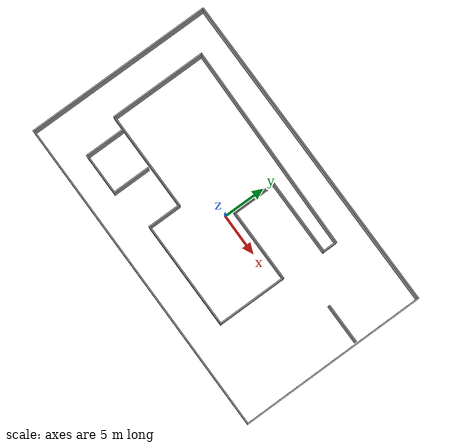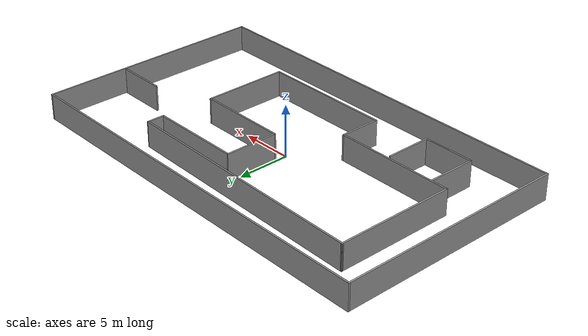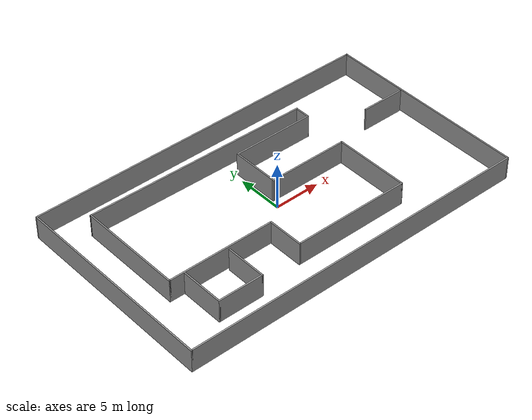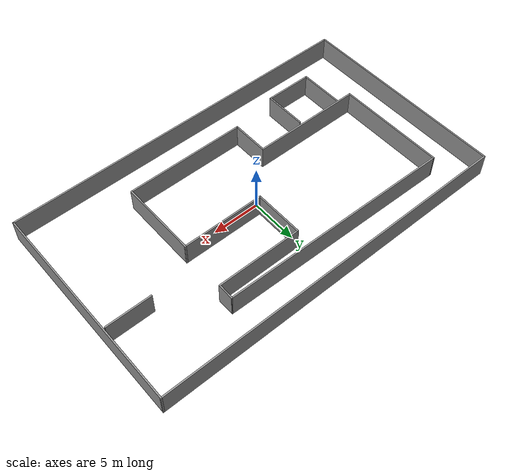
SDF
<sdf version='1.10'>
  <world name='default'>
    <gui>
      <camera name='gzclient_camera'>
        <pose>0 0 60 0 1.5707 0</pose>
      </camera>
    </gui>
    <gravity>0 0 -9.8000000000000007</gravity>
    <magnetic_field>6.0000000000000002e-06 2.3e-05 -4.1999999999999998e-05</magnetic_field>
    <atmosphere type='adiabatic'/>
    <physics name='default_physics' default='false' type='ode'>
      <max_step_size>0.01</max_step_size>
      <real_time_factor>1</real_time_factor>
      <real_time_update_rate>200</real_time_update_rate>
    </physics>
    <plugin name='gz::sim::systems::Physics' filename='gz-sim-physics-system'/>
    <plugin name='gz::sim::systems::Sensors' filename='gz-sim-sensors-system'>
      <render_engine>ogre2</render_engine>
    </plugin>
    <plugin name='gz::sim::systems::Imu' filename='gz-sim-imu-system'/>
    <plugin name='gz::sim::systems::Contact' filename='gz-sim-contact-system'/>
    <plugin name='gz::sim::systems::UserCommands' filename='gz-sim-user-commands-system'/>
    <plugin name='gz::sim::systems::SceneBroadcaster' filename='gz-sim-scene-broadcaster-system'/>
    <scene>
      <ambient>0.400000006 0.400000006 0.400000006 1</ambient>
      <background>0.699999988 0.699999988 0.699999988 1</background>
      <shadows>true</shadows>
      <grid>false</grid>
      <origin_visual>false</origin_visual>
    </scene>
    <spherical_coordinates>
      <surface_model>EARTH_WGS84</surface_model>
      <latitude_deg>0</latitude_deg>
      <longitude_deg>0</longitude_deg>
      <elevation>0</elevation>
      <heading_deg>0</heading_deg>
    </spherical_coordinates>
    <light name='sun' type='directional'>
      <cast_shadows>false</cast_shadows>
      <pose>0 0 10 0 0 0</pose>
      <diffuse>0.8 0.8 0.8 1</diffuse>
      <specular>0.2 0.2 0.2 1</specular>
      <attenuation>
        <range>1000</range>
        <constant>0.9</constant>
        <linear>0.01</linear>
        <quadratic>0.001</quadratic>
      </attenuation>
      <direction>-0.5 0.1 -0.9</direction>
    </light>
    <include>
      <uri>model://indoor</uri>
      <name>indoor</name>
      <pose>0 0 0 0 0 0</pose>
    </include>
  </world>
</sdf>

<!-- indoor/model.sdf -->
<sdf version='1.6'>
  <model name='indoor'>
    <pose frame=''>1.55125 -0.136388 0 0 -0 0</pose>
    <link name='Wall_10'>
      <collision name='Wall_10_Collision'>
        <geometry>
          <box>
            <size>38.25 0.15 2.5</size>
          </box>
        </geometry>
        <pose frame=''>0 0 1.25 0 -0 0</pose>
      </collision>
      <visual name='Wall_10_Visual'>
        <pose frame=''>0 0 1.25 0 -0 0</pose>
        <geometry>
          <box>
            <size>38.25 0.15 2.5</size>
          </box>
        </geometry>
        <material>
          <script>
            <uri>file://media/materials/scripts/gazebo.material</uri>
            <name>Gazebo/Grey</name>
          </script>
          <ambient>1 1 1 1</ambient>
        </material>
        <meta>
          <layer>0</layer>
        </meta>
      </visual>
      <pose frame=''>1e-06 11.05 0 0 -0 3.14159</pose>
    </link>
    <link name='Wall_12'>
      <collision name='Wall_12_Collision'>
        <geometry>
          <box>
            <size>11.5 0.15 2.5</size>
          </box>
        </geometry>
        <pose frame=''>0 0 1.25 0 -0 0</pose>
      </collision>
      <visual name='Wall_12_Visual'>
        <pose frame=''>0 0 1.25 0 -0 0</pose>
        <geometry>
          <box>
            <size>11.5 0.15 2.5</size>
          </box>
        </geometry>
        <material>
          <script>
            <uri>file://media/materials/scripts/gazebo.material</uri>
            <name>Gazebo/Grey</name>
          </script>
          <ambient>1 1 1 1</ambient>
        </material>
        <meta>
          <layer>0</layer>
        </meta>
      </visual>
      <pose frame=''>-15.2375 2.35899 0 0 -0 -1.5708</pose>
    </link>
    <link name='Wall_13'>
      <collision name='Wall_13_Collision'>
        <geometry>
          <box>
            <size>11.75 0.15 2.5</size>
          </box>
        </geometry>
        <pose frame=''>0 0 1.25 0 -0 0</pose>
      </collision>
      <visual name='Wall_13_Visual'>
        <pose frame=''>0 0 1.25 0 -0 0</pose>
        <geometry>
          <box>
            <size>11.75 0.15 2.5</size>
          </box>
        </geometry>
        <material>
          <script>
            <uri>file://media/materials/scripts/gazebo.material</uri>
            <name>Gazebo/Grey</name>
          </script>
          <ambient>1 1 1 1</ambient>
        </material>
        <meta>
          <layer>0</layer>
        </meta>
      </visual>
      <pose frame=''>-9.43747 -3.31601 0 0 -0 0</pose>
    </link>
    <link name='Wall_14'>
      <collision name='Wall_14_Collision'>
        <geometry>
          <box>
            <size>4 0.15 2.5</size>
          </box>
        </geometry>
        <pose frame=''>0 0 1.25 0 -0 0</pose>
      </collision>
      <visual name='Wall_14_Visual'>
        <pose frame=''>0 0 1.25 0 -0 0</pose>
        <geometry>
          <box>
            <size>4 0.15 2.5</size>
          </box>
        </geometry>
        <material>
          <script>
            <uri>file://media/materials/scripts/gazebo.material</uri>
            <name>Gazebo/Grey</name>
          </script>
          <ambient>1 1 1 1</ambient>
        </material>
        <meta>
          <layer>0</layer>
        </meta>
      </visual>
      <pose frame=''>-3.63747 -5.24101 0 0 -0 -1.5708</pose>
    </link>
    <link name='Wall_15'>
      <collision name='Wall_15_Collision'>
        <geometry>
          <box>
            <size>12.75 0.15 2.5</size>
          </box>
        </geometry>
        <pose frame=''>0 0 1.25 0 -0 0</pose>
      </collision>
      <visual name='Wall_15_Visual'>
        <pose frame=''>0 0 1.25 0 -0 0</pose>
        <geometry>
          <box>
            <size>12.75 0.15 2.5</size>
          </box>
        </geometry>
        <material>
          <script>
            <uri>file://media/materials/scripts/gazebo.material</uri>
            <name>Gazebo/Grey</name>
          </script>
          <ambient>1 1 1 1</ambient>
        </material>
        <meta>
          <layer>0</layer>
        </meta>
      </visual>
      <pose frame=''>2.66253 -7.16601 0 0 -0 0</pose>
    </link>
    <link name='Wall_16'>
      <collision name='Wall_16_Collision'>
        <geometry>
          <box>
            <size>8.25 0.15 2.5</size>
          </box>
        </geometry>
        <pose frame=''>0 0 1.25 0 -0 0</pose>
      </collision>
      <visual name='Wall_16_Visual'>
        <pose frame=''>0 0 1.25 0 -0 0</pose>
        <geometry>
          <box>
            <size>8.25 0.15 2.5</size>
          </box>
        </geometry>
        <material>
          <script>
            <uri>file://media/materials/scripts/gazebo.material</uri>
            <name>Gazebo/Grey</name>
          </script>
          <ambient>1 1 1 1</ambient>
        </material>
        <meta>
          <layer>0</layer>
        </meta>
      </visual>
      <pose frame=''>8.96253 -3.11601 0 0 -0 1.5708</pose>
    </link>
    <link name='Wall_17'>
      <collision name='Wall_17_Collision'>
        <geometry>
          <box>
            <size>8.75 0.15 2.5</size>
          </box>
        </geometry>
        <pose frame=''>0 0 1.25 0 -0 0</pose>
      </collision>
      <visual name='Wall_17_Visual'>
        <pose frame=''>0 0 1.25 0 -0 0</pose>
        <geometry>
          <box>
            <size>8.75 0.15 2.5</size>
          </box>
        </geometry>
        <material>
          <script>
            <uri>file://media/materials/scripts/gazebo.material</uri>
            <name>Gazebo/Grey</name>
          </script>
          <ambient>1 1 1 1</ambient>
        </material>
        <meta>
          <layer>0</layer>
        </meta>
      </visual>
      <pose frame=''>4.66253 0.933993 0 0 -0 3.14159</pose>
    </link>
    <link name='Wall_18'>
      <collision name='Wall_18_Collision'>
        <geometry>
          <box>
            <size>5.25 0.15 2.5</size>
          </box>
        </geometry>
        <pose frame=''>0 0 1.25 0 -0 0</pose>
      </collision>
      <visual name='Wall_18_Visual'>
        <pose frame=''>0 0 1.25 0 -0 0</pose>
        <geometry>
          <box>
            <size>5.25 0.15 2.5</size>
          </box>
        </geometry>
        <material>
          <script>
            <uri>file://media/materials/scripts/gazebo.material</uri>
            <name>Gazebo/Grey</name>
          </script>
          <ambient>1 1 1 1</ambient>
        </material>
        <meta>
          <layer>0</layer>
        </meta>
      </visual>
      <pose frame=''>0.362533 3.48399 0 0 -0 1.5708</pose>
    </link>
    <link name='Wall_19'>
      <collision name='Wall_19_Collision'>
        <geometry>
          <box>
            <size>9 0.15 2.5</size>
          </box>
        </geometry>
        <pose frame=''>0 0 1.25 0 -0 0</pose>
      </collision>
      <visual name='Wall_19_Visual'>
        <pose frame=''>0 0 1.25 0 -0 0</pose>
        <geometry>
          <box>
            <size>9 0.15 2.5</size>
          </box>
        </geometry>
        <material>
          <script>
            <uri>file://media/materials/scripts/gazebo.material</uri>
            <name>Gazebo/Grey</name>
          </script>
          <ambient>1 1 1 1</ambient>
        </material>
        <meta>
          <layer>0</layer>
        </meta>
      </visual>
      <pose frame=''>4.78753 6.03399 0 0 -0 0</pose>
    </link>
    <link name='Wall_20'>
      <collision name='Wall_20_Collision'>
        <geometry>
          <box>
            <size>1.75 0.15 2.5</size>
          </box>
        </geometry>
        <pose frame=''>0 0 1.25 0 -0 0</pose>
      </collision>
      <visual name='Wall_20_Visual'>
        <pose frame=''>0 0 1.25 0 -0 0</pose>
        <geometry>
          <box>
            <size>1.75 0.15 2.5</size>
          </box>
        </geometry>
        <material>
          <script>
            <uri>file://media/materials/scripts/gazebo.material</uri>
            <name>Gazebo/Grey</name>
          </script>
          <ambient>1 1 1 1</ambient>
        </material>
        <meta>
          <layer>0</layer>
        </meta>
      </visual>
      <pose frame=''>9.21253 6.83399 0 0 -0 1.5708</pose>
    </link>
    <link name='Wall_21'>
      <collision name='Wall_21_Collision'>
        <geometry>
          <box>
            <size>24.6033 0.15 2.5</size>
          </box>
        </geometry>
        <pose frame=''>0 0 1.25 0 -0 0</pose>
      </collision>
      <visual name='Wall_21_Visual'>
        <pose frame=''>0 0 1.25 0 -0 0</pose>
        <geometry>
          <box>
            <size>24.6033 0.15 2.5</size>
          </box>
        </geometry>
        <material>
          <script>
            <uri>file://media/materials/scripts/gazebo.material</uri>
            <name>Gazebo/Grey</name>
          </script>
          <ambient>1 1 1 1</ambient>
        </material>
        <meta>
          <layer>0</layer>
        </meta>
      </visual>
      <pose frame=''>-3.01247 7.83399 0 0 -0 3.12523</pose>
    </link>
    <link name='Wall_23'>
      <collision name='Wall_23_Collision'>
        <geometry>
          <box>
            <size>4.75 0.15 2.5</size>
          </box>
        </geometry>
        <pose frame=''>0 0 1.25 0 -0 0</pose>
      </collision>
      <visual name='Wall_23_Visual'>
        <pose frame=''>0 0 1.25 0 -0 0</pose>
        <geometry>
          <box>
            <size>4.75 0.15 2.5</size>
          </box>
        </geometry>
        <material>
          <script>
            <uri>file://media/materials/scripts/gazebo.material</uri>
            <name>Gazebo/Grey</name>
          </script>
          <ambient>1 1 1 1</ambient>
        </material>
        <meta>
          <layer>0</layer>
        </meta>
      </visual>
      <pose frame=''>16.5014 3.11429 0 0 -0 0</pose>
    </link>
    <link name='Wall_25'>
      <collision name='Wall_25_Collision'>
        <geometry>
          <box>
            <size>4.75 0.15 2.5</size>
          </box>
        </geometry>
        <pose frame=''>0 0 1.25 0 -0 0</pose>
      </collision>
      <visual name='Wall_25_Visual'>
        <pose frame=''>0 0 1.25 0 -0 0</pose>
        <geometry>
          <box>
            <size>4.75 0.15 2.5</size>
          </box>
        </geometry>
        <material>
          <script>
            <uri>file://media/materials/scripts/gazebo.material</uri>
            <name>Gazebo/Grey</name>
          </script>
          <ambient>1 1 1 1</ambient>
        </material>
        <meta>
          <layer>0</layer>
        </meta>
      </visual>
      <pose frame=''>-13.6033 -5.74024 0 0 -0 -1.5708</pose>
    </link>
    <link name='Wall_26'>
      <collision name='Wall_26_Collision'>
        <geometry>
          <box>
            <size>5 0.15 2.5</size>
          </box>
        </geometry>
        <pose frame=''>0 0 1.25 0 -0 0</pose>
      </collision>
      <visual name='Wall_26_Visual'>
        <pose frame=''>0 0 1.25 0 -0 0</pose>
        <geometry>
          <box>
            <size>5 0.15 2.5</size>
          </box>
        </geometry>
        <material>
          <script>
            <uri>file://media/materials/scripts/gazebo.material</uri>
            <name>Gazebo/Grey</name>
          </script>
          <ambient>1 1 1 1</ambient>
        </material>
        <meta>
          <layer>0</layer>
        </meta>
      </visual>
      <pose frame=''>-11.1783 -8.04024 0 0 -0 0</pose>
    </link>
    <link name='Wall_27'>
      <collision name='Wall_27_Collision'>
        <geometry>
          <box>
            <size>4.5 0.15 2.5</size>
          </box>
        </geometry>
        <pose frame=''>0 0 1.25 0 -0 0</pose>
      </collision>
      <visual name='Wall_27_Visual'>
        <pose frame=''>0 0 1.25 0 -0 0</pose>
        <geometry>
          <box>
            <size>4.5 0.15 2.5</size>
          </box>
        </geometry>
        <material>
          <script>
            <uri>file://media/materials/scripts/gazebo.material</uri>
            <name>Gazebo/Grey</name>
          </script>
          <ambient>1 1 1 1</ambient>
        </material>
        <meta>
          <layer>0</layer>
        </meta>
      </visual>
      <pose frame=''>-8.75329 -5.86524 0 0 -0 1.5708</pose>
    </link>
    <link name='Wall_7'>
      <collision name='Wall_7_Collision'>
        <geometry>
          <box>
            <size>22.25 0.15 2.5</size>
          </box>
        </geometry>
        <pose frame=''>0 0 1.25 0 -0 0</pose>
      </collision>
      <visual name='Wall_7_Visual'>
        <pose frame=''>0 0 1.25 0 -0 0</pose>
        <geometry>
          <box>
            <size>22.25 0.15 2.5</size>
          </box>
        </geometry>
        <material>
          <script>
            <uri>file://media/materials/scripts/gazebo.material</uri>
            <name>Gazebo/Grey</name>
          </script>
          <ambient>1 1 1 1</ambient>
        </material>
        <meta>
          <layer>0</layer>
        </meta>
      </visual>
      <pose frame=''>-19.05 0 0 0 -0 -1.5708</pose>
    </link>
    <link name='Wall_8'>
      <collision name='Wall_8_Collision'>
        <geometry>
          <box>
            <size>38.25 0.15 2.5</size>
          </box>
        </geometry>
        <pose frame=''>0 0 1.25 0 -0 0</pose>
      </collision>
      <visual name='Wall_8_Visual'>
        <pose frame=''>0 0 1.25 0 -0 0</pose>
        <geometry>
          <box>
            <size>38.25 0.15 2.5</size>
          </box>
        </geometry>
        <material>
          <script>
            <uri>file://media/materials/scripts/gazebo.material</uri>
            <name>Gazebo/Grey</name>
          </script>
          <ambient>1 1 1 1</ambient>
        </material>
        <meta>
          <layer>0</layer>
        </meta>
      </visual>
      <pose frame=''>1e-06 -11.05 0 0 -0 0</pose>
    </link>
    <link name='Wall_9'>
      <collision name='Wall_9_Collision'>
        <geometry>
          <box>
            <size>22.25 0.15 2.5</size>
          </box>
        </geometry>
        <pose frame=''>0 0 1.25 0 -0 0</pose>
      </collision>
      <visual name='Wall_9_Visual'>
        <pose frame=''>0 0 1.25 0 -0 0</pose>
        <geometry>
          <box>
            <size>22.25 0.15 2.5</size>
          </box>
        </geometry>
        <material>
          <script>
            <uri>file://media/materials/scripts/gazebo.material</uri>
            <name>Gazebo/Grey</name>
          </script>
          <ambient>1 1 1 1</ambient>
        </material>
        <meta>
          <layer>0</layer>
        </meta>
      </visual>
      <pose frame=''>19.05 0 0 0 -0 1.5708</pose>
    </link>
    <static>1</static>
  </model>
</sdf>
